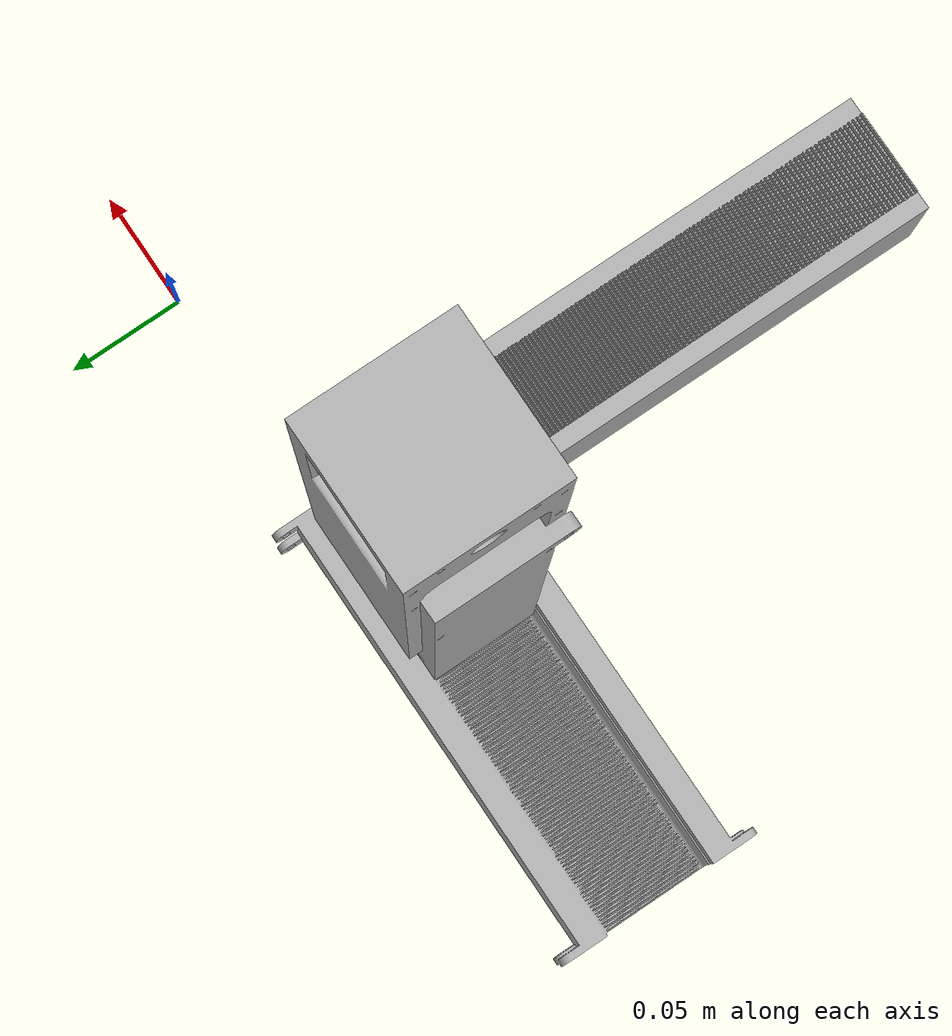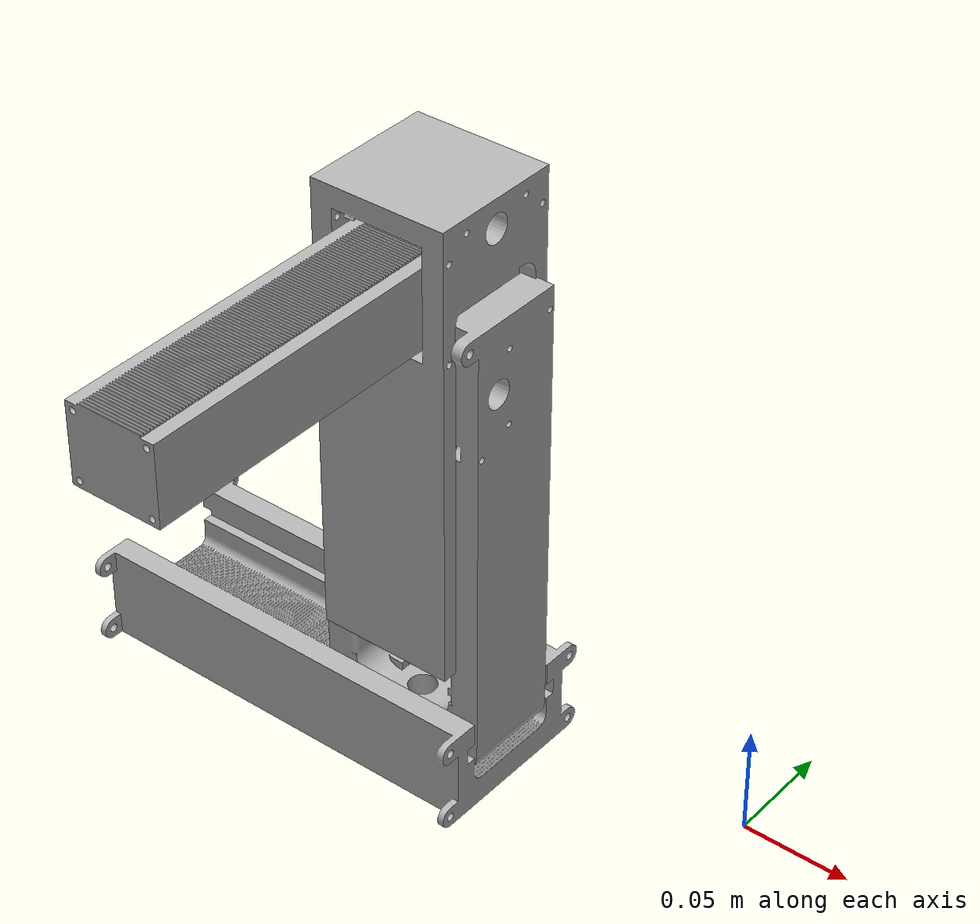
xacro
<?xml version="1.0" ?>
<robot name="tomato_demo" xmlns:xacro="http://www.ros.org/wiki/xacro">

<xacro:include filename="$(find tomato_demo)/urdf/materials.xacro" />
<xacro:include filename="$(find tomato_demo)/urdf/tomato_demo.trans" />
<xacro:include filename="$(find tomato_demo)/urdf/tomato_demo.gazebo" />
<link name="base_link">
  <inertial>
    <origin xyz="-0.20183562683084336 -0.023219598363527647 0.0007597407262746711" rpy="0 0 0"/>
    <mass value="2.4437607527286107"/>
    <inertia ixx="0.001888" iyy="0.008469" izz="0.009554" ixy="-0.0" iyz="-0.0" ixz="-0.0"/>
  </inertial>
  <visual>
    <origin xyz="0 0 0" rpy="0 0 0"/>
    <geometry>
      <mesh filename="file://$(find tomato_demo)/meshes/base_link.stl" scale="0.001 0.001 0.001"/>
    </geometry>
    <material name="silver"/>
  </visual>
  <collision>
    <origin xyz="0 0 0" rpy="0 0 0"/>
    <geometry>
      <mesh filename="file://$(find tomato_demo)/meshes/base_link.stl" scale="0.001 0.001 0.001"/>
    </geometry>
  </collision>
</link>

<link name="link3_1">
  <inertial>
    <origin xyz="0.14312559111837414 0.22008308832266144 0.183042047068245" rpy="0 0 0"/>
    <mass value="2.585838753027379"/>
    <inertia ixx="0.013075" iyy="0.012554" izz="0.002231" ixy="0.0" iyz="0.000101" ixz="0.0"/>
  </inertial>
  <visual>
    <origin xyz="0.285751 0.243589 0.02505" rpy="0 0 0"/>
    <geometry>
      <mesh filename="file://$(find tomato_demo)/meshes/link3_1.stl" scale="0.001 0.001 0.001"/>
    </geometry>
    <material name="silver"/>
  </visual>
  <collision>
    <origin xyz="0.285751 0.243589 0.02505" rpy="0 0 0"/>
    <geometry>
      <mesh filename="file://$(find tomato_demo)/meshes/link3_1.stl" scale="0.001 0.001 0.001"/>
    </geometry>
  </collision>
</link>

<link name="link4_1">
  <inertial>
    <origin xyz="0.19637559111837424 -0.33523759836352857 -0.056469826785349314" rpy="0 0 0"/>
    <mass value="2.428954061980038"/>
    <inertia ixx="0.008977" iyy="0.000613" izz="0.009049" ixy="-0.0" iyz="0.0" ixz="-0.0"/>
  </inertial>
  <visual>
    <origin xyz="0.338751 -0.238418 -0.287339" rpy="0 0 0"/>
    <geometry>
      <mesh filename="file://$(find tomato_demo)/meshes/link4_1.stl" scale="0.001 0.001 0.001"/>
    </geometry>
    <material name="silver"/>
  </visual>
  <collision>
    <origin xyz="0.338751 -0.238418 -0.287339" rpy="0 0 0"/>
    <geometry>
      <mesh filename="file://$(find tomato_demo)/meshes/link4_1.stl" scale="0.001 0.001 0.001"/>
    </geometry>
  </collision>
</link>

<link name="link2_1">
  <inertial>
    <origin xyz="-0.0402174216430467 0.02903167586642213 0.0823100387473419" rpy="0 0 0"/>
    <mass value="2.664224980782301"/>
    <inertia ixx="0.012536" iyy="0.014653" izz="0.003056" ixy="-9e-06" iyz="9e-06" ixz="5.3e-05"/>
  </inertial>
  <visual>
    <origin xyz="0.102875 0.05207 -0.01552" rpy="0 0 0"/>
    <geometry>
      <mesh filename="file://$(find tomato_demo)/meshes/link2_1.stl" scale="0.001 0.001 0.001"/>
    </geometry>
    <material name="silver"/>
  </visual>
  <collision>
    <origin xyz="0.102875 0.05207 -0.01552" rpy="0 0 0"/>
    <geometry>
      <mesh filename="file://$(find tomato_demo)/meshes/link2_1.stl" scale="0.001 0.001 0.001"/>
    </geometry>
  </collision>
</link>

<joint name="Slider_Z" type="prismatic">
  <origin xyz="-0.182876 -0.191519 -0.04057" rpy="0 0 0"/>
  <parent link="link2_1"/>
  <child link="link3_1"/>
  <axis xyz="-0.0 0.0 -1.0"/>
  <limit upper="0.0" lower="-0.1" effort="100" velocity="100"/>
</joint>

<joint name="Slider_Y" type="prismatic">
  <origin xyz="-0.053 0.482007 0.312389" rpy="0 0 0"/>
  <parent link="link3_1"/>
  <child link="link4_1"/>
  <axis xyz="-0.0 -1.0 -0.0"/>
  <limit upper="0.0" lower="-0.14" effort="100" velocity="100"/>
</joint>

<joint name="Slider_X" type="prismatic">
  <origin xyz="-0.102875 -0.05207 0.01552" rpy="0 0 0"/>
  <parent link="base_link"/>
  <child link="link2_1"/>
  <axis xyz="-1.0 0.0 0.0"/>
  <limit upper="0.12" lower="0.0" effort="100" velocity="100"/>
</joint>

</robot>

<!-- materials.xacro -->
<robot name="tomato_demo" xmlns:xacro="http://www.ros.org/wiki/xacro" >

<material name="silver">
  <color rgba="0.700 0.700 0.700 1.000"/>
</material>

</robot>

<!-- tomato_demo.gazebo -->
<robot name="tomato_demo" xmlns:xacro="http://www.ros.org/wiki/xacro" >

<xacro:property name="body_color" value="Gazebo/Silver" />

<gazebo>
  <plugin name="control" filename="libgazebo_ros_control.so"/>
</gazebo>
<gazebo reference="base_link">
  <material>${body_color}</material>
  <mu1>0.2</mu1>
  <mu2>0.2</mu2>
  <self_collide>true</self_collide>
  <gravity>true</gravity>
</gazebo>

<gazebo reference="link3_1">
  <material>${body_color}</material>
  <mu1>0.2</mu1>
  <mu2>0.2</mu2>
  <self_collide>true</self_collide>
</gazebo>

<gazebo reference="link4_1">
  <material>${body_color}</material>
  <mu1>0.2</mu1>
  <mu2>0.2</mu2>
  <self_collide>true</self_collide>
</gazebo>

<gazebo reference="link2_1">
  <material>${body_color}</material>
  <mu1>0.2</mu1>
  <mu2>0.2</mu2>
  <self_collide>true</self_collide>
</gazebo>

</robot>
